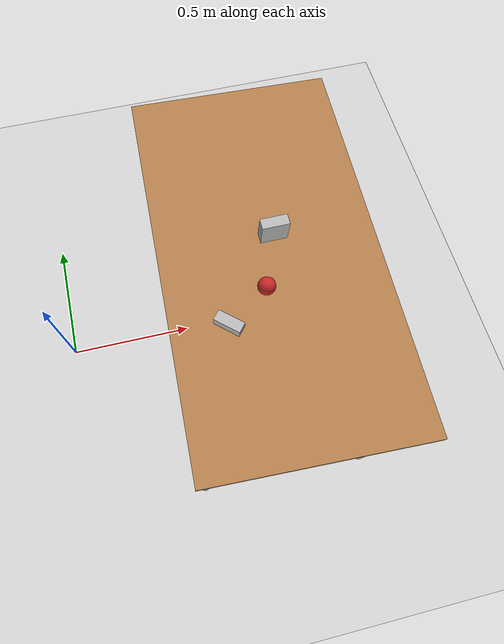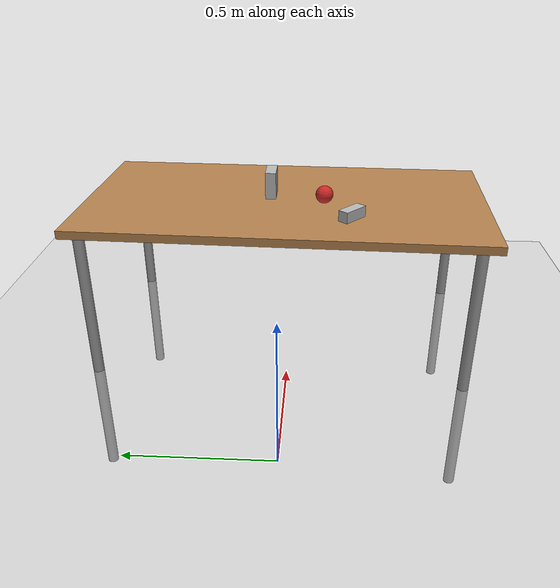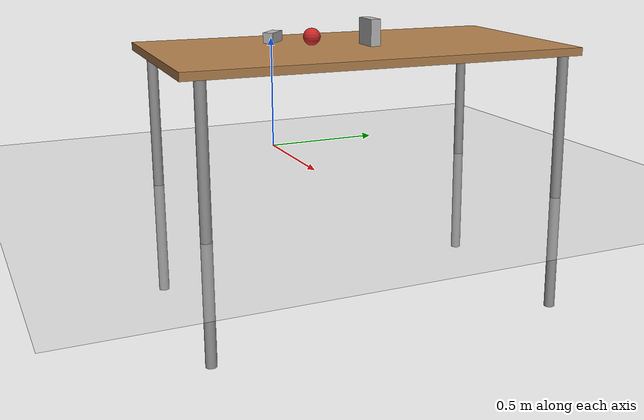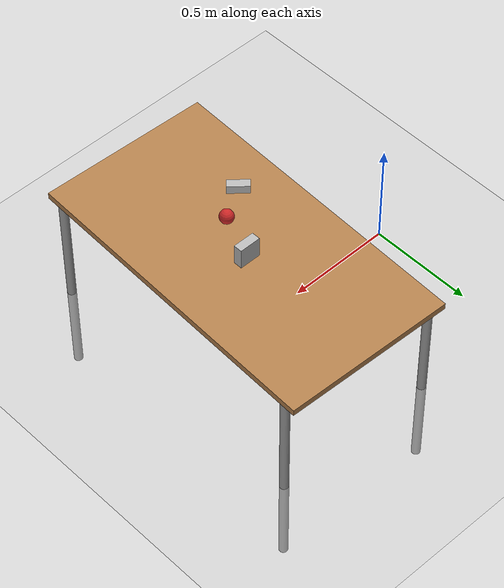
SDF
<sdf version="1.4">
 <world name="default">
  <light name="sun" type="directional">
   <pose>0 0 10 0 -0 0</pose>
   <diffuse>0.8 0.8 0.8 1</diffuse>
   <specular>0.2 0.2 0.2 1</specular>
   <attenuation>
    <range>1000</range>
    <constant>0.9</constant>
    <linear>0.01</linear>
    <quadratic>0.001</quadratic>
   </attenuation>
   <direction>-0.5 0.1 -0.9</direction>
  </light>
  <model name="ground_plane">
   <static>1</static>
   <link name="link">
    <collision name="collision">
     <geometry><plane><normal>0 0 1</normal><size>100 100</size></plane></geometry>
     <surface><friction><ode><mu>100</mu><mu2>50</mu2></ode></friction></surface>
    </collision>
    <visual name="visual">
     <cast_shadows>0</cast_shadows>
     <geometry><plane><normal>0 0 1</normal><size>100 100</size></plane></geometry>
     <material>
      <script><uri>file://media/materials/scripts/gazebo.material</uri><name>Gazebo/Grey</name></script>
     </material>
    </visual>
    <velocity_decay><linear>0</linear><angular>0</angular></velocity_decay>
   </link>
  </model>
  <physics type="ode">
   <max_step_size>0.001</max_step_size>
   <real_time_factor>1</real_time_factor>
   <real_time_update_rate>1000</real_time_update_rate>
   <gravity>0 0 -9.8</gravity>
  </physics>
  <scene><ambient>0.4 0.4 0.4 1</ambient><background>0.7 0.7 0.7 1</background><shadows>1</shadows></scene>
  <spherical_coordinates>
   <surface_model>EARTH_WGS84</surface_model>
   <latitude_deg>0</latitude_deg>
   <longitude_deg>0</longitude_deg>
   <elevation>0</elevation>
   <heading_deg>0</heading_deg>
  </spherical_coordinates>
  <model name="culinder">
   <pose>0 0 -1.36965e+06 0 -0 0</pose>
   <link name="__default__">
    <velocity_decay><linear>0</linear><angular>0</angular></velocity_decay>
    <inertial>
     <inertia><ixx>1</ixx><ixy>0</ixy><ixz>0</ixz><iyy>1</iyy><iyz>0</iyz><izz>1</izz></inertia>
     <mass>1</mass>
    </inertial>
   </link>
   <static>0</static>
  </model>
  <model name="table">
   <static>1</static>
   <link name="link">
    <collision name="surface">
     <pose>0 0 1 0 -0 0</pose>
     <geometry><box><size>1.5 0.8 0.03</size></box></geometry>
     <surface><friction><ode><mu>0.6</mu><mu2>0.6</mu2></ode></friction></surface>
    </collision>
    <visual name="visual1">
     <pose>0 0 1 0 -0 0</pose>
     <geometry><box><size>1.5 0.8 0.03</size></box></geometry>
     <material>
      <script><uri>file://media/materials/scripts/gazebo.material</uri><name>Gazebo/Wood</name></script>
     </material>
    </visual>
    <collision name="front_left_leg">
     <pose>0.68 0.38 0.5 0 -0 0</pose>
     <geometry><cylinder><radius>0.02</radius><length>1</length></cylinder></geometry>
    </collision>
    <visual name="front_left_leg">
     <pose>0.68 0.38 0.5 0 -0 0</pose>
     <geometry><cylinder><radius>0.02</radius><length>1</length></cylinder></geometry>
     <material>
      <script><uri>file://media/materials/scripts/gazebo.material</uri><name>Gazebo/Grey</name></script>
     </material>
    </visual>
    <collision name="front_right_leg">
     <pose>0.68 -0.38 0.5 0 -0 0</pose>
     <geometry><cylinder><radius>0.02</radius><length>1</length></cylinder></geometry>
    </collision>
    <visual name="front_right_leg">
     <pose>0.68 -0.38 0.5 0 -0 0</pose>
     <geometry><cylinder><radius>0.02</radius><length>1</length></cylinder></geometry>
     <material>
      <script><uri>file://media/materials/scripts/gazebo.material</uri><name>Gazebo/Grey</name></script>
     </material>
    </visual>
    <collision name="back_right_leg">
     <pose>-0.68 -0.38 0.5 0 -0 0</pose>
     <geometry><cylinder><radius>0.02</radius><length>1</length></cylinder></geometry>
    </collision>
    <visual name="back_right_leg">
     <pose>-0.68 -0.38 0.5 0 -0 0</pose>
     <geometry><cylinder><radius>0.02</radius><length>1</length></cylinder></geometry>
     <material>
      <script><uri>file://media/materials/scripts/gazebo.material</uri><name>Gazebo/Grey</name></script>
     </material>
    </visual>
    <collision name="back_left_leg">
     <pose>-0.68 0.38 0.5 0 -0 0</pose>
     <geometry><cylinder><radius>0.02</radius><length>1</length></cylinder></geometry>
    </collision>
    <visual name="back_left_leg">
     <pose>-0.68 0.38 0.5 0 -0 0</pose>
     <geometry><cylinder><radius>0.02</radius><length>1</length></cylinder></geometry>
     <material>
      <script><uri>file://media/materials/scripts/gazebo.material</uri><name>Gazebo/Grey</name></script>
     </material>
    </visual>
    <velocity_decay><linear>0</linear><angular>0</angular></velocity_decay>
   </link>
   <pose>0.834309 0.019062 -0.447435 0 0 -1.60844</pose>
  </model>
  <model name="box3">
   <link name="base_link">
    <inertial>
     <mass>10</mass>
     <inertia><ixx>0.4</ixx><ixy>0</ixy><ixz>0</ixz><iyy>0.4</iyy><iyz>0</iyz><izz>0.2</izz></inertia>
    </inertial>
    <collision name="base_link_collision"><geometry><box><size>0.1 0.04 0.04</size></box></geometry></collision>
    <visual name="base_link_visual"><geometry><box><size>0.1 0.04 0.04</size></box></geometry></visual>
    <velocity_decay><linear>0</linear><angular>0</angular></velocity_decay>
   </link>
   <pose>0.629436 -0.222941 0.587565 3e-06 -0 -0.72755</pose>
   <static>0</static>
  </model>
  <model name="RoboCup SPL Ball">
   <static>0</static>
   <link name="ball">
    <inertial>
     <mass>0.0056</mass>
     <inertia>
      <ixx>2.37e-06</ixx>
      <iyy>2.37e-06</iyy>
      <izz>2.37e-06</izz>
      <ixy>0</ixy>
      <ixz>0</ixz>
      <iyz>0</iyz>
     </inertia>
    </inertial>
    <collision name="collision"><geometry><sphere><radius>0.0325</radius></sphere></geometry></collision>
    <visual name="visual">
     <geometry><sphere><radius>0.0325</radius></sphere></geometry>
     <material>
      <script><uri>file://media/materials/scripts/gazebo.material</uri><name>Gazebo/RedBright</name></script>
     </material>
    </visual>
    <velocity_decay><linear>0</linear><angular>0</angular></velocity_decay>
   </link>
   <pose>0.785777 -0.125188 0.600065 -0.000251 -0.0001 3.30872e-24</pose>
  </model>
  <model name="box4">
   <link name="base_link">
    <inertial>
     <mass>10</mass>
     <inertia><ixx>0.4</ixx><ixy>0</ixy><ixz>0</ixz><iyy>0.4</iyy><iyz>0</iyz><izz>0.2</izz></inertia>
    </inertial>
    <collision name="base_link_collision"><geometry><box><size>0.1 0.04 0.1</size></box></geometry></collision>
    <visual name="base_link_visual"><geometry><box><size>0.1 0.04 0.1</size></box></geometry></visual>
    <velocity_decay><linear>0</linear><angular>0</angular></velocity_decay>
   </link>
   <pose>0.864318 0.076924 0.617565 0 -0 0.000518</pose>
   <static>0</static>
  </model>
 </world>
</sdf>
